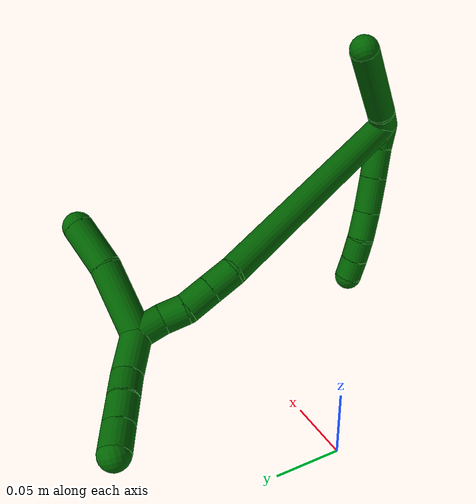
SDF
<sdf version="1.7">
 <world name="default">
  <model name="6">
   <static>0</static>
   <link name="6">
    <collision name="collision-cylinder-e_1_2_8">
     <pose>0.004866 0.003134 -0.008518 -2.78904 0.492108 -1.90778</pose>
     <geometry><cylinder><radius>0.0125</radius><length>0.020596</length></cylinder></geometry>
     <surface>
      <friction><ode><mu>1.16</mu><mu2>1.16</mu2><slip1>0</slip1><slip2>0</slip2></ode></friction>
      <contact><ode><kp>1e+06</kp><kd>1</kd><max_vel>0</max_vel><min_depth>0.001</min_depth></ode></contact>
     </surface>
    </collision>
    <visual name="visual-cylinder-e_1_2_8">
     <pose>0.004866 0.003134 -0.008518 -2.78904 0.492108 -1.90778</pose>
     <geometry><cylinder><radius>0.0125</radius><length>0.020596</length></cylinder></geometry>
     <material><ambient>0 0.392157 0.003922 1</ambient></material>
    </visual>
    <collision name="collision-cylinder-e_2_8_9">
     <pose>0.015231 0.010242 -0.02949 -2.8327 0.398233 -1.82731</pose>
     <geometry><cylinder><radius>0.0125</radius><length>0.028366</length></cylinder></geometry>
     <surface>
      <friction><ode><mu>1.16</mu><mu2>1.16</mu2><slip1>0</slip1><slip2>0</slip2></ode></friction>
      <contact><ode><kp>1e+06</kp><kd>1</kd><max_vel>0</max_vel><min_depth>0.001</min_depth></ode></contact>
     </surface>
    </collision>
    <visual name="visual-cylinder-e_2_8_9">
     <pose>0.015231 0.010242 -0.02949 -2.8327 0.398233 -1.82731</pose>
     <geometry><cylinder><radius>0.0125</radius><length>0.028366</length></cylinder></geometry>
     <material><ambient>0 0.392157 0.003922 1</ambient></material>
    </visual>
    <collision name="collision-cylinder-e_3_9_10">
     <pose>0.026968 0.019404 -0.056647 -2.8024 0.380504 -1.68796</pose>
     <geometry><cylinder><radius>0.0125</radius><length>0.033584</length></cylinder></geometry>
     <surface>
      <friction><ode><mu>1.16</mu><mu2>1.16</mu2><slip1>0</slip1><slip2>0</slip2></ode></friction>
      <contact><ode><kp>1e+06</kp><kd>1</kd><max_vel>0</max_vel><min_depth>0.001</min_depth></ode></contact>
     </surface>
    </collision>
    <visual name="visual-cylinder-e_3_9_10">
     <pose>0.026968 0.019404 -0.056647 -2.8024 0.380504 -1.68796</pose>
     <geometry><cylinder><radius>0.0125</radius><length>0.033584</length></cylinder></geometry>
     <material><ambient>0 0.392157 0.003922 1</ambient></material>
    </visual>
    <collision name="collision-cylinder-e_4_10_11">
     <pose>0.037621 0.029442 -0.082819 -2.7415 0.340864 -1.4076</pose>
     <geometry><cylinder><radius>0.0125</radius><length>0.026427</length></cylinder></geometry>
     <surface>
      <friction><ode><mu>1.16</mu><mu2>1.16</mu2><slip1>0</slip1><slip2>0</slip2></ode></friction>
      <contact><ode><kp>1e+06</kp><kd>1</kd><max_vel>0</max_vel><min_depth>0.001</min_depth></ode></contact>
     </surface>
    </collision>
    <visual name="visual-cylinder-e_4_10_11">
     <pose>0.037621 0.029442 -0.082819 -2.7415 0.340864 -1.4076</pose>
     <geometry><cylinder><radius>0.0125</radius><length>0.026427</length></cylinder></geometry>
     <material><ambient>0 0.392157 0.003922 1</ambient></material>
    </visual>
    <collision name="collision-cylinder-e_5_11_12">
     <pose>0.047549 0.037739 -0.102527 -2.74539 0.552896 -1.91008</pose>
     <geometry><cylinder><radius>0.0125</radius><length>0.020986</length></cylinder></geometry>
     <surface>
      <friction><ode><mu>1.16</mu><mu2>1.16</mu2><slip1>0</slip1><slip2>0</slip2></ode></friction>
      <contact><ode><kp>1e+06</kp><kd>1</kd><max_vel>0</max_vel><min_depth>0.001</min_depth></ode></contact>
     </surface>
    </collision>
    <visual name="visual-cylinder-e_5_11_12">
     <pose>0.047549 0.037739 -0.102527 -2.74539 0.552896 -1.91008</pose>
     <geometry><cylinder><radius>0.0125</radius><length>0.020986</length></cylinder></geometry>
     <material><ambient>0 0.392157 0.003922 1</ambient></material>
    </visual>
    <collision name="collision-cylinder-e_6_12_6">
     <pose>0.05827 0.044935 -0.118459 -2.68806 0.546833 -1.76466</pose>
     <geometry><cylinder><radius>0.0125</radius><length>0.020041</length></cylinder></geometry>
     <surface>
      <friction><ode><mu>1.16</mu><mu2>1.16</mu2><slip1>0</slip1><slip2>0</slip2></ode></friction>
      <contact><ode><kp>1e+06</kp><kd>1</kd><max_vel>0</max_vel><min_depth>0.001</min_depth></ode></contact>
     </surface>
    </collision>
    <visual name="visual-cylinder-e_6_12_6">
     <pose>0.05827 0.044935 -0.118459 -2.68806 0.546833 -1.76466</pose>
     <geometry><cylinder><radius>0.0125</radius><length>0.020041</length></cylinder></geometry>
     <material><ambient>0 0.392157 0.003922 1</ambient></material>
    </visual>
    <collision name="collision-cylinder-e_1_2_13">
     <pose>-0.010097 0.004445 0.004366 -0.794367 -1.01795 0.459867</pose>
     <geometry><cylinder><radius>0.0125</radius><length>0.02373</length></cylinder></geometry>
     <surface>
      <friction><ode><mu>1.16</mu><mu2>1.16</mu2><slip1>0</slip1><slip2>0</slip2></ode></friction>
      <contact><ode><kp>1e+06</kp><kd>1</kd><max_vel>0</max_vel><min_depth>0.001</min_depth></ode></contact>
     </surface>
    </collision>
    <visual name="visual-cylinder-e_1_2_13">
     <pose>-0.010097 0.004445 0.004366 -0.794367 -1.01795 0.459867</pose>
     <geometry><cylinder><radius>0.0125</radius><length>0.02373</length></cylinder></geometry>
     <material><ambient>0 0.392157 0.003922 1</ambient></material>
    </visual>
    <collision name="collision-cylinder-e_2_13_5">
     <pose>-0.049024 0.02251 0.029653 -0.577083 -0.857129 0.269585</pose>
     <geometry><cylinder><radius>0.0125</radius><length>0.07627</length></cylinder></geometry>
     <surface>
      <friction><ode><mu>1.16</mu><mu2>1.16</mu2><slip1>0</slip1><slip2>0</slip2></ode></friction>
      <contact><ode><kp>1e+06</kp><kd>1</kd><max_vel>0</max_vel><min_depth>0.001</min_depth></ode></contact>
     </surface>
    </collision>
    <visual name="visual-cylinder-e_2_13_5">
     <pose>-0.049024 0.02251 0.029653 -0.577083 -0.857129 0.269585</pose>
     <geometry><cylinder><radius>0.0125</radius><length>0.07627</length></cylinder></geometry>
     <material><ambient>0 0.392157 0.003922 1</ambient></material>
    </visual>
    <collision name="collision-cylinder-e_1_2_14">
     <pose>-0.021419 0.090603 -0.047725 -2.05561 -0.206187 0.339566</pose>
     <geometry><cylinder><radius>0.0125</radius><length>0.20924</length></cylinder></geometry>
     <surface>
      <friction><ode><mu>1.16</mu><mu2>1.16</mu2><slip1>0</slip1><slip2>0</slip2></ode></friction>
      <contact><ode><kp>1e+06</kp><kd>1</kd><max_vel>0</max_vel><min_depth>0.001</min_depth></ode></contact>
     </surface>
    </collision>
    <visual name="visual-cylinder-e_1_2_14">
     <pose>-0.021419 0.090603 -0.047725 -2.05561 -0.206187 0.339566</pose>
     <geometry><cylinder><radius>0.0125</radius><length>0.20924</length></cylinder></geometry>
     <material><ambient>0 0.392157 0.003922 1</ambient></material>
    </visual>
    <collision name="collision-cylinder-e_2_14_15">
     <pose>-0.042293 0.191966 -0.100219 -1.98802 0.046284 -0.071125</pose>
     <geometry><cylinder><radius>0.0125</radius><length>0.023563</length></cylinder></geometry>
     <surface>
      <friction><ode><mu>1.16</mu><mu2>1.16</mu2><slip1>0</slip1><slip2>0</slip2></ode></friction>
      <contact><ode><kp>1e+06</kp><kd>1</kd><max_vel>0</max_vel><min_depth>0.001</min_depth></ode></contact>
     </surface>
    </collision>
    <visual name="visual-cylinder-e_2_14_15">
     <pose>-0.042293 0.191966 -0.100219 -1.98802 0.046284 -0.071125</pose>
     <geometry><cylinder><radius>0.0125</radius><length>0.023563</length></cylinder></geometry>
     <material><ambient>0 0.392157 0.003922 1</ambient></material>
    </visual>
    <collision name="collision-cylinder-e_3_15_16">
     <pose>-0.041385 0.213622 -0.109907 -1.99483 0.030286 -0.046895</pose>
     <geometry><cylinder><radius>0.0125</radius><length>0.023922</length></cylinder></geometry>
     <surface>
      <friction><ode><mu>1.16</mu><mu2>1.16</mu2><slip1>0</slip1><slip2>0</slip2></ode></friction>
      <contact><ode><kp>1e+06</kp><kd>1</kd><max_vel>0</max_vel><min_depth>0.001</min_depth></ode></contact>
     </surface>
    </collision>
    <visual name="visual-cylinder-e_3_15_16">
     <pose>-0.041385 0.213622 -0.109907 -1.99483 0.030286 -0.046895</pose>
     <geometry><cylinder><radius>0.0125</radius><length>0.023922</length></cylinder></geometry>
     <material><ambient>0 0.392157 0.003922 1</ambient></material>
    </visual>
    <collision name="collision-cylinder-e_4_16_17">
     <pose>-0.038983 0.234472 -0.116325 -1.7202 0.199941 -0.23202</pose>
     <geometry><cylinder><radius>0.0125</radius><length>0.02054</length></cylinder></geometry>
     <surface>
      <friction><ode><mu>1.16</mu><mu2>1.16</mu2><slip1>0</slip1><slip2>0</slip2></ode></friction>
      <contact><ode><kp>1e+06</kp><kd>1</kd><max_vel>0</max_vel><min_depth>0.001</min_depth></ode></contact>
     </surface>
    </collision>
    <visual name="visual-cylinder-e_4_16_17">
     <pose>-0.038983 0.234472 -0.116325 -1.7202 0.199941 -0.23202</pose>
     <geometry><cylinder><radius>0.0125</radius><length>0.02054</length></cylinder></geometry>
     <material><ambient>0 0.392157 0.003922 1</ambient></material>
    </visual>
    <collision name="collision-cylinder-e_5_17_1">
     <pose>-0.037693 0.255361 -0.120831 -1.8392 -0.065971 0.086543</pose>
     <geometry><cylinder><radius>0.0125</radius><length>0.022735</length></cylinder></geometry>
     <surface>
      <friction><ode><mu>1.16</mu><mu2>1.16</mu2><slip1>0</slip1><slip2>0</slip2></ode></friction>
      <contact><ode><kp>1e+06</kp><kd>1</kd><max_vel>0</max_vel><min_depth>0.001</min_depth></ode></contact>
     </surface>
    </collision>
    <visual name="visual-cylinder-e_5_17_1">
     <pose>-0.037693 0.255361 -0.120831 -1.8392 -0.065971 0.086543</pose>
     <geometry><cylinder><radius>0.0125</radius><length>0.022735</length></cylinder></geometry>
     <material><ambient>0 0.392157 0.003922 1</ambient></material>
    </visual>
    <collision name="collision-cylinder-e_1_1_18">
     <pose>-0.045904 0.273973 -0.13739 -2.62624 -0.446782 1.42291</pose>
     <geometry><cylinder><radius>0.0125</radius><length>0.034539</length></cylinder></geometry>
     <surface>
      <friction><ode><mu>1.16</mu><mu2>1.16</mu2><slip1>0</slip1><slip2>0</slip2></ode></friction>
      <contact><ode><kp>1e+06</kp><kd>1</kd><max_vel>0</max_vel><min_depth>0.001</min_depth></ode></contact>
     </surface>
    </collision>
    <visual name="visual-cylinder-e_1_1_18">
     <pose>-0.045904 0.273973 -0.13739 -2.62624 -0.446782 1.42291</pose>
     <geometry><cylinder><radius>0.0125</radius><length>0.034539</length></cylinder></geometry>
     <material><ambient>0 0.392157 0.003922 1</ambient></material>
    </visual>
    <collision name="collision-cylinder-e_2_18_19">
     <pose>-0.060481 0.285248 -0.157968 -2.66821 -0.733561 2.02024</pose>
     <geometry><cylinder><radius>0.0125</radius><length>0.021257</length></cylinder></geometry>
     <surface>
      <friction><ode><mu>1.16</mu><mu2>1.16</mu2><slip1>0</slip1><slip2>0</slip2></ode></friction>
      <contact><ode><kp>1e+06</kp><kd>1</kd><max_vel>0</max_vel><min_depth>0.001</min_depth></ode></contact>
     </surface>
    </collision>
    <visual name="visual-cylinder-e_2_18_19">
     <pose>-0.060481 0.285248 -0.157968 -2.66821 -0.733561 2.02024</pose>
     <geometry><cylinder><radius>0.0125</radius><length>0.021257</length></cylinder></geometry>
     <material><ambient>0 0.392157 0.003922 1</ambient></material>
    </visual>
    <collision name="collision-cylinder-e_3_19_20">
     <pose>-0.074233 0.292886 -0.173036 -2.6761 -0.635425 1.89248</pose>
     <geometry><cylinder><radius>0.0125</radius><length>0.022361</length></cylinder></geometry>
     <surface>
      <friction><ode><mu>1.16</mu><mu2>1.16</mu2><slip1>0</slip1><slip2>0</slip2></ode></friction>
      <contact><ode><kp>1e+06</kp><kd>1</kd><max_vel>0</max_vel><min_depth>0.001</min_depth></ode></contact>
     </surface>
    </collision>
    <visual name="visual-cylinder-e_3_19_20">
     <pose>-0.074233 0.292886 -0.173036 -2.6761 -0.635425 1.89248</pose>
     <geometry><cylinder><radius>0.0125</radius><length>0.022361</length></cylinder></geometry>
     <material><ambient>0 0.392157 0.003922 1</ambient></material>
    </visual>
    <collision name="collision-cylinder-e_4_20_4">
     <pose>-0.087386 0.300787 -0.188945 -2.68537 -0.639342 1.91838</pose>
     <geometry><cylinder><radius>0.0125</radius><length>0.021843</length></cylinder></geometry>
     <surface>
      <friction><ode><mu>1.16</mu><mu2>1.16</mu2><slip1>0</slip1><slip2>0</slip2></ode></friction>
      <contact><ode><kp>1e+06</kp><kd>1</kd><max_vel>0</max_vel><min_depth>0.001</min_depth></ode></contact>
     </surface>
    </collision>
    <visual name="visual-cylinder-e_4_20_4">
     <pose>-0.087386 0.300787 -0.188945 -2.68537 -0.639342 1.91838</pose>
     <geometry><cylinder><radius>0.0125</radius><length>0.021843</length></cylinder></geometry>
     <material><ambient>0 0.392157 0.003922 1</ambient></material>
    </visual>
    <collision name="collision-cylinder-e_1_1_21">
     <pose>-0.033082 0.271195 -0.095233 -0.169569 0.182655 -0.015566</pose>
     <geometry><cylinder><radius>0.0125</radius><length>0.059026</length></cylinder></geometry>
     <surface>
      <friction><ode><mu>1.16</mu><mu2>1.16</mu2><slip1>0</slip1><slip2>0</slip2></ode></friction>
      <contact><ode><kp>1e+06</kp><kd>1</kd><max_vel>0</max_vel><min_depth>0.001</min_depth></ode></contact>
     </surface>
    </collision>
    <visual name="visual-cylinder-e_1_1_21">
     <pose>-0.033082 0.271195 -0.095233 -0.169569 0.182655 -0.015566</pose>
     <geometry><cylinder><radius>0.0125</radius><length>0.059026</length></cylinder></geometry>
     <material><ambient>0 0.392157 0.003922 1</ambient></material>
    </visual>
    <collision name="collision-cylinder-e_2_21_3">
     <pose>-0.021727 0.282391 -0.048077 -0.32731 0.296906 -0.049382</pose>
     <geometry><cylinder><radius>0.0125</radius><length>0.040974</length></cylinder></geometry>
     <surface>
      <friction><ode><mu>1.16</mu><mu2>1.16</mu2><slip1>0</slip1><slip2>0</slip2></ode></friction>
      <contact><ode><kp>1e+06</kp><kd>1</kd><max_vel>0</max_vel><min_depth>0.001</min_depth></ode></contact>
     </surface>
    </collision>
    <visual name="visual-cylinder-e_2_21_3">
     <pose>-0.021727 0.282391 -0.048077 -0.32731 0.296906 -0.049382</pose>
     <geometry><cylinder><radius>0.0125</radius><length>0.040974</length></cylinder></geometry>
     <material><ambient>0 0.392157 0.003922 1</ambient></material>
    </visual>
    <collision name="collision-sphere-3">
     <pose>-0.015733 0.28869 -0.029526 0 -0 0</pose>
     <geometry><sphere><radius>0.0125</radius></sphere></geometry>
     <surface>
      <friction><ode><mu>1.16</mu><mu2>1.16</mu2><slip1>0</slip1><slip2>0</slip2></ode></friction>
      <contact><ode><kp>1e+06</kp><kd>1</kd><max_vel>0</max_vel><min_depth>0.001</min_depth></ode></contact>
     </surface>
    </collision>
    <visual name="visual-sphere-3">
     <pose>-0.015733 0.28869 -0.029526 0 -0 0</pose>
     <geometry><sphere><radius>0.0125</radius></sphere></geometry>
     <material><ambient>0 0.392157 0.003922 1</ambient></material>
    </visual>
    <collision name="collision-sphere-21">
     <pose>-0.027721 0.276093 -0.066627 0 -0 0</pose>
     <geometry><sphere><radius>0.0125</radius></sphere></geometry>
     <surface>
      <friction><ode><mu>1.16</mu><mu2>1.16</mu2><slip1>0</slip1><slip2>0</slip2></ode></friction>
      <contact><ode><kp>1e+06</kp><kd>1</kd><max_vel>0</max_vel><min_depth>0.001</min_depth></ode></contact>
     </surface>
    </collision>
    <visual name="visual-sphere-21">
     <pose>-0.027721 0.276093 -0.066627 0 -0 0</pose>
     <geometry><sphere><radius>0.0125</radius></sphere></geometry>
     <material><ambient>0 0.392157 0.003922 1</ambient></material>
    </visual>
    <collision name="collision-sphere-4">
     <pose>-0.093902 0.304648 -0.196813 0 -0 0</pose>
     <geometry><sphere><radius>0.0125</radius></sphere></geometry>
     <surface>
      <friction><ode><mu>1.16</mu><mu2>1.16</mu2><slip1>0</slip1><slip2>0</slip2></ode></friction>
      <contact><ode><kp>1e+06</kp><kd>1</kd><max_vel>0</max_vel><min_depth>0.001</min_depth></ode></contact>
     </surface>
    </collision>
    <visual name="visual-sphere-4">
     <pose>-0.093902 0.304648 -0.196813 0 -0 0</pose>
     <geometry><sphere><radius>0.0125</radius></sphere></geometry>
     <material><ambient>0 0.392157 0.003922 1</ambient></material>
    </visual>
    <collision name="collision-sphere-20">
     <pose>-0.080869 0.296926 -0.181077 0 -0 0</pose>
     <geometry><sphere><radius>0.0125</radius></sphere></geometry>
     <surface>
      <friction><ode><mu>1.16</mu><mu2>1.16</mu2><slip1>0</slip1><slip2>0</slip2></ode></friction>
      <contact><ode><kp>1e+06</kp><kd>1</kd><max_vel>0</max_vel><min_depth>0.001</min_depth></ode></contact>
     </surface>
    </collision>
    <visual name="visual-sphere-20">
     <pose>-0.080869 0.296926 -0.181077 0 -0 0</pose>
     <geometry><sphere><radius>0.0125</radius></sphere></geometry>
     <material><ambient>0 0.392157 0.003922 1</ambient></material>
    </visual>
    <collision name="collision-sphere-12">
     <pose>0.05306 0.041185 -0.110765 0 -0 0</pose>
     <geometry><sphere><radius>0.0125</radius></sphere></geometry>
     <surface>
      <friction><ode><mu>1.16</mu><mu2>1.16</mu2><slip1>0</slip1><slip2>0</slip2></ode></friction>
      <contact><ode><kp>1e+06</kp><kd>1</kd><max_vel>0</max_vel><min_depth>0.001</min_depth></ode></contact>
     </surface>
    </collision>
    <visual name="visual-sphere-12">
     <pose>0.05306 0.041185 -0.110765 0 -0 0</pose>
     <geometry><sphere><radius>0.0125</radius></sphere></geometry>
     <material><ambient>0 0.392157 0.003922 1</ambient></material>
    </visual>
    <collision name="collision-sphere-11">
     <pose>0.042039 0.034293 -0.094289 0 -0 0</pose>
     <geometry><sphere><radius>0.0125</radius></sphere></geometry>
     <surface>
      <friction><ode><mu>1.16</mu><mu2>1.16</mu2><slip1>0</slip1><slip2>0</slip2></ode></friction>
      <contact><ode><kp>1e+06</kp><kd>1</kd><max_vel>0</max_vel><min_depth>0.001</min_depth></ode></contact>
     </surface>
    </collision>
    <visual name="visual-sphere-11">
     <pose>0.042039 0.034293 -0.094289 0 -0 0</pose>
     <geometry><sphere><radius>0.0125</radius></sphere></geometry>
     <material><ambient>0 0.392157 0.003922 1</ambient></material>
    </visual>
    <collision name="collision-sphere-10">
     <pose>0.033204 0.024591 -0.07135 0 -0 0</pose>
     <geometry><sphere><radius>0.0125</radius></sphere></geometry>
     <surface>
      <friction><ode><mu>1.16</mu><mu2>1.16</mu2><slip1>0</slip1><slip2>0</slip2></ode></friction>
      <contact><ode><kp>1e+06</kp><kd>1</kd><max_vel>0</max_vel><min_depth>0.001</min_depth></ode></contact>
     </surface>
    </collision>
    <visual name="visual-sphere-10">
     <pose>0.033204 0.024591 -0.07135 0 -0 0</pose>
     <geometry><sphere><radius>0.0125</radius></sphere></geometry>
     <material><ambient>0 0.392157 0.003922 1</ambient></material>
    </visual>
    <collision name="collision-sphere-9">
     <pose>0.020731 0.014216 -0.041944 0 -0 0</pose>
     <geometry><sphere><radius>0.0125</radius></sphere></geometry>
     <surface>
      <friction><ode><mu>1.16</mu><mu2>1.16</mu2><slip1>0</slip1><slip2>0</slip2></ode></friction>
      <contact><ode><kp>1e+06</kp><kd>1</kd><max_vel>0</max_vel><min_depth>0.001</min_depth></ode></contact>
     </surface>
    </collision>
    <visual name="visual-sphere-9">
     <pose>0.020731 0.014216 -0.041944 0 -0 0</pose>
     <geometry><sphere><radius>0.0125</radius></sphere></geometry>
     <material><ambient>0 0.392157 0.003922 1</ambient></material>
    </visual>
    <collision name="collision-sphere-2">
     <geometry><sphere><radius>0.0125</radius></sphere></geometry>
     <surface>
      <friction><ode><mu>1.16</mu><mu2>1.16</mu2><slip1>0</slip1><slip2>0</slip2></ode></friction>
      <contact><ode><kp>1e+06</kp><kd>1</kd><max_vel>0</max_vel><min_depth>0.001</min_depth></ode></contact>
     </surface>
    </collision>
    <visual name="visual-sphere-2">
     <geometry><sphere><radius>0.0125</radius></sphere></geometry>
     <material><ambient>0 0.392157 0.003922 1</ambient></material>
    </visual>
    <collision name="collision-sphere-19">
     <pose>-0.067597 0.288847 -0.164995 0 -0 0</pose>
     <geometry><sphere><radius>0.0125</radius></sphere></geometry>
     <surface>
      <friction><ode><mu>1.16</mu><mu2>1.16</mu2><slip1>0</slip1><slip2>0</slip2></ode></friction>
      <contact><ode><kp>1e+06</kp><kd>1</kd><max_vel>0</max_vel><min_depth>0.001</min_depth></ode></contact>
     </surface>
    </collision>
    <visual name="visual-sphere-19">
     <pose>-0.067597 0.288847 -0.164995 0 -0 0</pose>
     <geometry><sphere><radius>0.0125</radius></sphere></geometry>
     <material><ambient>0 0.392157 0.003922 1</ambient></material>
    </visual>
    <collision name="collision-sphere-8">
     <pose>0.009731 0.006268 -0.017035 0 -0 0</pose>
     <geometry><sphere><radius>0.0125</radius></sphere></geometry>
     <surface>
      <friction><ode><mu>1.16</mu><mu2>1.16</mu2><slip1>0</slip1><slip2>0</slip2></ode></friction>
      <contact><ode><kp>1e+06</kp><kd>1</kd><max_vel>0</max_vel><min_depth>0.001</min_depth></ode></contact>
     </surface>
    </collision>
    <visual name="visual-sphere-8">
     <pose>0.009731 0.006268 -0.017035 0 -0 0</pose>
     <geometry><sphere><radius>0.0125</radius></sphere></geometry>
     <material><ambient>0 0.392157 0.003922 1</ambient></material>
    </visual>
    <collision name="collision-sphere-6">
     <pose>0.063481 0.048685 -0.126153 0 -0 0</pose>
     <geometry><sphere><radius>0.0125</radius></sphere></geometry>
     <surface>
      <friction><ode><mu>1.16</mu><mu2>1.16</mu2><slip1>0</slip1><slip2>0</slip2></ode></friction>
      <contact><ode><kp>1e+06</kp><kd>1</kd><max_vel>0</max_vel><min_depth>0.001</min_depth></ode></contact>
     </surface>
    </collision>
    <visual name="visual-sphere-6">
     <pose>0.063481 0.048685 -0.126153 0 -0 0</pose>
     <geometry><sphere><radius>0.0125</radius></sphere></geometry>
     <material><ambient>0 0.392157 0.003922 1</ambient></material>
    </visual>
    <collision name="collision-sphere-13">
     <pose>-0.020195 0.00889 0.008732 0 -0 0</pose>
     <geometry><sphere><radius>0.0125</radius></sphere></geometry>
     <surface>
      <friction><ode><mu>1.16</mu><mu2>1.16</mu2><slip1>0</slip1><slip2>0</slip2></ode></friction>
      <contact><ode><kp>1e+06</kp><kd>1</kd><max_vel>0</max_vel><min_depth>0.001</min_depth></ode></contact>
     </surface>
    </collision>
    <visual name="visual-sphere-13">
     <pose>-0.020195 0.00889 0.008732 0 -0 0</pose>
     <geometry><sphere><radius>0.0125</radius></sphere></geometry>
     <material><ambient>0 0.392157 0.003922 1</ambient></material>
    </visual>
    <collision name="collision-sphere-5">
     <pose>-0.077853 0.036129 0.050574 0 -0 0</pose>
     <geometry><sphere><radius>0.0125</radius></sphere></geometry>
     <surface>
      <friction><ode><mu>1.16</mu><mu2>1.16</mu2><slip1>0</slip1><slip2>0</slip2></ode></friction>
      <contact><ode><kp>1e+06</kp><kd>1</kd><max_vel>0</max_vel><min_depth>0.001</min_depth></ode></contact>
     </surface>
    </collision>
    <visual name="visual-sphere-5">
     <pose>-0.077853 0.036129 0.050574 0 -0 0</pose>
     <geometry><sphere><radius>0.0125</radius></sphere></geometry>
     <material><ambient>0 0.392157 0.003922 1</ambient></material>
    </visual>
    <collision name="collision-sphere-14">
     <pose>-0.042838 0.181206 -0.09545 0 -0 0</pose>
     <geometry><sphere><radius>0.0125</radius></sphere></geometry>
     <surface>
      <friction><ode><mu>1.16</mu><mu2>1.16</mu2><slip1>0</slip1><slip2>0</slip2></ode></friction>
      <contact><ode><kp>1e+06</kp><kd>1</kd><max_vel>0</max_vel><min_depth>0.001</min_depth></ode></contact>
     </surface>
    </collision>
    <visual name="visual-sphere-14">
     <pose>-0.042838 0.181206 -0.09545 0 -0 0</pose>
     <geometry><sphere><radius>0.0125</radius></sphere></geometry>
     <material><ambient>0 0.392157 0.003922 1</ambient></material>
    </visual>
    <collision name="collision-sphere-15">
     <pose>-0.041747 0.202725 -0.104988 0 -0 0</pose>
     <geometry><sphere><radius>0.0125</radius></sphere></geometry>
     <surface>
      <friction><ode><mu>1.16</mu><mu2>1.16</mu2><slip1>0</slip1><slip2>0</slip2></ode></friction>
      <contact><ode><kp>1e+06</kp><kd>1</kd><max_vel>0</max_vel><min_depth>0.001</min_depth></ode></contact>
     </surface>
    </collision>
    <visual name="visual-sphere-15">
     <pose>-0.041747 0.202725 -0.104988 0 -0 0</pose>
     <geometry><sphere><radius>0.0125</radius></sphere></geometry>
     <material><ambient>0 0.392157 0.003922 1</ambient></material>
    </visual>
    <collision name="collision-sphere-16">
     <pose>-0.041023 0.224518 -0.114826 0 -0 0</pose>
     <geometry><sphere><radius>0.0125</radius></sphere></geometry>
     <surface>
      <friction><ode><mu>1.16</mu><mu2>1.16</mu2><slip1>0</slip1><slip2>0</slip2></ode></friction>
      <contact><ode><kp>1e+06</kp><kd>1</kd><max_vel>0</max_vel><min_depth>0.001</min_depth></ode></contact>
     </surface>
    </collision>
    <visual name="visual-sphere-16">
     <pose>-0.041023 0.224518 -0.114826 0 -0 0</pose>
     <geometry><sphere><radius>0.0125</radius></sphere></geometry>
     <material><ambient>0 0.392157 0.003922 1</ambient></material>
    </visual>
    <collision name="collision-sphere-17">
     <pose>-0.036944 0.244425 -0.117823 0 -0 0</pose>
     <geometry><sphere><radius>0.0125</radius></sphere></geometry>
     <surface>
      <friction><ode><mu>1.16</mu><mu2>1.16</mu2><slip1>0</slip1><slip2>0</slip2></ode></friction>
      <contact><ode><kp>1e+06</kp><kd>1</kd><max_vel>0</max_vel><min_depth>0.001</min_depth></ode></contact>
     </surface>
    </collision>
    <visual name="visual-sphere-17">
     <pose>-0.036944 0.244425 -0.117823 0 -0 0</pose>
     <geometry><sphere><radius>0.0125</radius></sphere></geometry>
     <material><ambient>0 0.392157 0.003922 1</ambient></material>
    </visual>
    <collision name="collision-sphere-1">
     <pose>-0.038442 0.266298 -0.123839 0 -0 0</pose>
     <geometry><sphere><radius>0.0125</radius></sphere></geometry>
     <surface>
      <friction><ode><mu>1.16</mu><mu2>1.16</mu2><slip1>0</slip1><slip2>0</slip2></ode></friction>
      <contact><ode><kp>1e+06</kp><kd>1</kd><max_vel>0</max_vel><min_depth>0.001</min_depth></ode></contact>
     </surface>
    </collision>
    <visual name="visual-sphere-1">
     <pose>-0.038442 0.266298 -0.123839 0 -0 0</pose>
     <geometry><sphere><radius>0.0125</radius></sphere></geometry>
     <material><ambient>0 0.392157 0.003922 1</ambient></material>
    </visual>
    <collision name="collision-sphere-18">
     <pose>-0.053365 0.281649 -0.150942 0 -0 0</pose>
     <geometry><sphere><radius>0.0125</radius></sphere></geometry>
     <surface>
      <friction><ode><mu>1.16</mu><mu2>1.16</mu2><slip1>0</slip1><slip2>0</slip2></ode></friction>
      <contact><ode><kp>1e+06</kp><kd>1</kd><max_vel>0</max_vel><min_depth>0.001</min_depth></ode></contact>
     </surface>
    </collision>
    <visual name="visual-sphere-18">
     <pose>-0.053365 0.281649 -0.150942 0 -0 0</pose>
     <geometry><sphere><radius>0.0125</radius></sphere></geometry>
     <material><ambient>0 0.392157 0.003922 1</ambient></material>
    </visual>
    <inertial>
     <pose>-0.022386 0.134315 -0.06809 0 -0 0</pose>
     <mass>0.75</mass>
     <inertia>
      <ixx>0.001015</ixx>
      <ixy>0</ixy>
      <ixz>0</ixz>
      <iyy>6.3e-05</iyy>
      <iyz>0</iyz>
      <izz>-0.000535</izz>
     </inertia>
    </inertial>
   </link>
   <pose>0.19278 -0.173801 0.156708 -0.112222 0.585813 -0.227014</pose>
  </model>
 </world>
</sdf>
